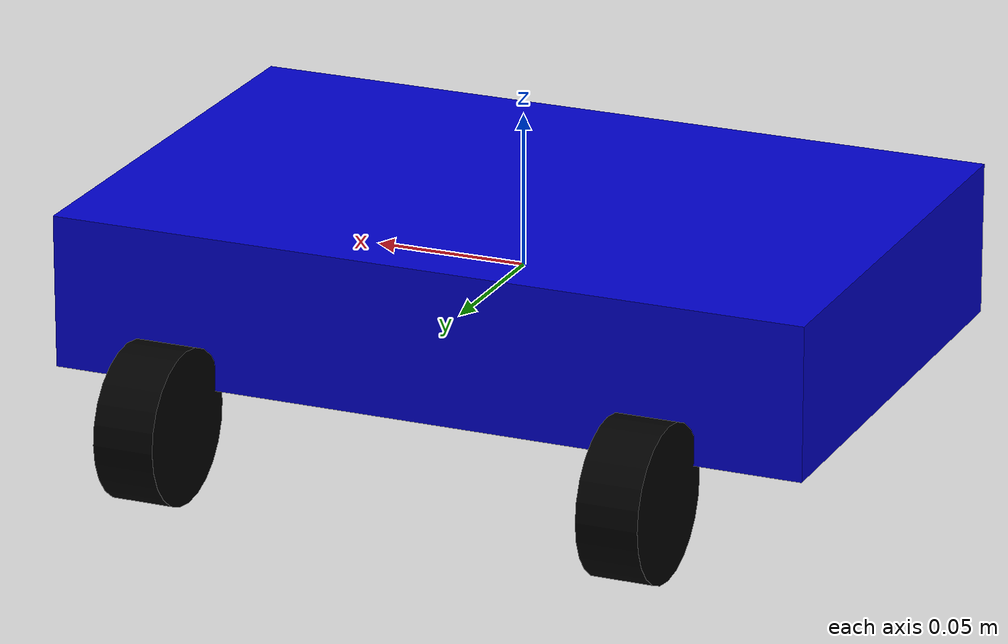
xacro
<?xml version="1.0"?>
<robot name="robotbase" xmlns:xacro="http://ros.org/wiki/xacro">
  <xacro:property name="width" value="0.2" />
  <xacro:property name="leglen" value="0.6" />
  <xacro:property name="polelen" value="0.2" />
  <xacro:property name="bodylen" value="0.6" />
  <xacro:property name="baselen" value="0.4" />
  <xacro:property name="wheeldiam" value="0.04" />
  <xacro:property name="pi" value="3.1415" />

 <xacro:macro name="default_inertial" params="mass">
    <inertial>
      <mass value="${mass}" />
      <inertia ixx="1.0" ixy="0.0" ixz="0.0" iyy="1.0" iyz="0.0" izz="1.0" />
    </inertial>
 </xacro:macro>

<link name="base_link">
    <visual>
      <geometry>
        <box size="0.16 .25 .05"/>
    </geometry>
    <origin rpy="0 0 1.57075" xyz="0 0 0"/>
    <material name="blue">
        <color rgba="0 0 .8 1"/>
    </material>
    </visual>
    <collision>
      <geometry>
      <box size="0.16 .25 .05"/>
      </geometry>
    </collision>
    <xacro:default_inertial mass="10"/>
 </link>

 <link name="right_front_wheel">
    <visual>
      <geometry>
        <cylinder length=".02" radius="0.025"/>
      </geometry>
      <material name="black">
        <color rgba="0 0 0 1"/>
      </material>
    </visual>
    <collision>
      <origin xyz="0 0 0" rpy="0 0 0" />
      <geometry>
      <cylinder length=".02" radius="0.025"/>
      </geometry>
    </collision>
    <xacro:default_inertial mass="1"/>
  </link>

  <joint name="right_front_wheel_joint" type="continuous">
    <axis xyz="0 0 1"/>
    <parent link="base_link"/>
    <child link="right_front_wheel"/>
    <origin rpy="0 1.57075 0" xyz="0.08 0.1 -0.03"/>
    <limit effort="100" velocity="100"/>
    <joint_properties damping="0.0" friction="0.0"/>
  </joint>

  <link name="right_back_wheel">
    <visual>
      <geometry>
        <cylinder length=".02" radius="0.025"/>
      </geometry>
      <material name="black">
        <color rgba="0 0 0 1"/>
      </material>
    </visual>
    <collision>
      <origin xyz="0 0 0" rpy="0 0 0" />
      <geometry>
      <cylinder length=".02" radius="0.025"/>
      </geometry>
    </collision>
    <xacro:default_inertial mass="1"/>
  </link>

  <joint name="right_back_wheel_joint" type="continuous">
    <axis xyz="0 0 1"/>
    <parent link="base_link"/>
    <child link="right_back_wheel"/>
    <origin rpy="0 1.57075 0" xyz="0.08 -0.1 -0.03"/>
    <limit effort="100" velocity="100"/>
    <joint_properties damping="0.0" friction="0.0"/>
 </joint>

 <link name="left_front_wheel">
    <visual>
      <geometry>
        <cylinder length=".02" radius="0.025"/>
      </geometry>
      <material name="black">
        <color rgba="0 0 0 1"/>
      </material>
    </visual>
    <collision>
      <origin xyz="0 0 0" rpy="0 0 0" />
      <geometry>
      <cylinder length=".02" radius="0.025"/>
      </geometry>
    </collision>
    <xacro:default_inertial mass="1"/>
  </link>

  <joint name="left_front_wheel_joint" type="continuous">
    <axis xyz="0 0 1"/>
    <parent link="base_link"/>
    <child link="left_front_wheel"/>
    <origin rpy="0 1.57075 0" xyz="-0.08 0.1 -0.03"/>
    <limit effort="100" velocity="100"/>
    <joint_properties damping="0.0" friction="0.0"/>
  </joint>

  <link name="left_back_wheel">
    <visual>
      <geometry>
        <cylinder length=".02" radius="0.025"/>
      </geometry>
      <material name="black">
        <color rgba="0 0 0 1"/>
      </material>
    </visual>
    <collision>
      <origin xyz="0 0 0" rpy="0 0 0" />
      <geometry>
      <cylinder length=".02" radius="0.025"/>
      </geometry>
    </collision>
    <xacro:default_inertial mass="1"/>
  </link>

  <joint name="left_back_wheel_joint" type="continuous">
    <axis xyz="0 0 1"/>
    <parent link="base_link"/>
    <child link="left_back_wheel"/>
    <origin rpy="0 1.57075 0" xyz="-0.08 -0.1 -0.03"/>
    <limit effort="100" velocity="100"/>
    <joint_properties damping="0.0" friction="0.0"/>
  </joint>

</robot>
